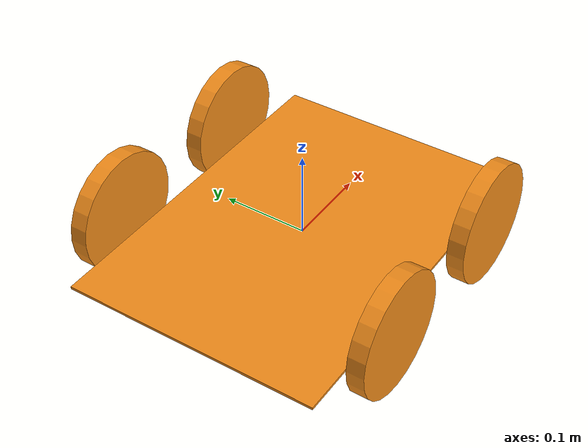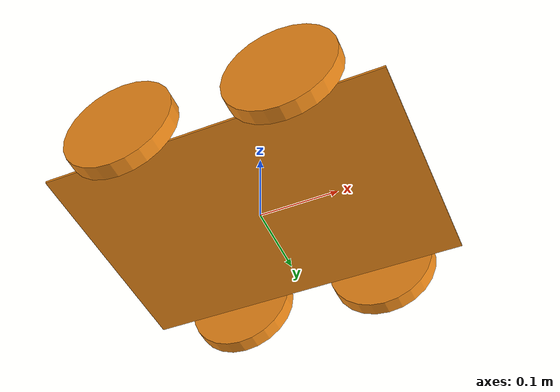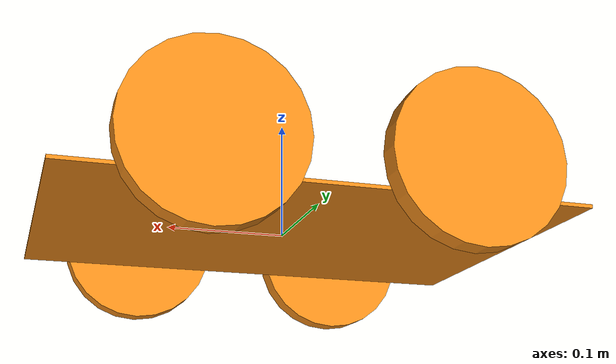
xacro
<?xml version="1.0"?>

<robot name="rrbot" xmlns:xacro="http://www.ros.org/wiki/xacro">

<xacro:macro name="steering" params="suffix x_offset wheel_offset y_offset car_base_height:=^ axle_offset_z=^ wheel_radius=^ wheel_mass=^">
<joint name="steer_${suffix}" type="continuous">
  <parent link="car_chassis_link"/>
  <child link="motor_${suffix}_link"/>
  <origin xyz="${x_offset} ${y_offset} ${car_base_height + axle_offset_z}" rpy="0 0 0"/>
  <axis xyz="0 1 0"/>
  <dynamics damping="0.7"/>
</joint>

<link name="motor_${suffix}_link">
  <collision>
    <origin xyz="0 ${wheel_offset} 0" rpy="${PI/2} 0 0"/>
    <geometry>
      <cylinder radius="${wheel_radius}" length="${wheel_width}"/>
    </geometry>
  </collision>

  <visual>
    <origin xyz="0 ${wheel_offset} 0" rpy="${PI/2} 0 0"/>
    <geometry>
      <cylinder radius="${wheel_radius}" length="${wheel_width}"/>
    </geometry>
    <material name="orange"/>
  </visual>

  <inertial>
    <origin xyz="0 ${wheel_offset} 0" rpy="${PI/2} 0 0"/>
    <mass value="${wheel_mass}"/>
    <inertia
        ixx="1.0" ixy="0.0" ixz="0.0"
        iyy="1.0" iyz="0.0"
        izz="1.0"/>
  </inertial>
</link>
</xacro:macro>

  <!-- Constants for robot dimensions -->
  <xacro:property name="PI" value="3.1415926535897931"/>
  <!-- base plate of the car -->
  <xacro:property name="car_base_width" value="0.3" />
  <xacro:property name="car_base_length" value="0.42" />
  <xacro:property name="car_base_height" value="0.003" />
  <xacro:property name="car_base_mass" value="0.2" />
  <!-- steering -->
  <xacro:property name="axle_offset_x" value="0.1" />
  <xacro:property name="axle_offset_z" value="0.02" />
  <!-- wheels -->
  <xacro:property name="wheel_width" value="0.02" />
  <xacro:property name="wheel_radius" value="0.07" />
  <xacro:property name="wheel_mass" value="0.1" />

  <!-- Import all Gazebo-customization elements, including Gazebo colors -->
  <!-- Import Rviz colors -->

  <!-- Used for fixing robot to Gazebo 'base_link' -->

  <!-- Base Link -->
  <link name="car_chassis_link">
    <collision>
      <origin xyz="0 0 ${car_base_height/2}" rpy="0 0 0"/>
      <geometry>
        <box size="${car_base_length} ${car_base_width} ${car_base_height}"/>
      </geometry>
    </collision>

    <visual>
      <origin xyz="0 0 ${car_base_height/2}" rpy="0 0 0"/>
      <geometry>
        <box size="${car_base_length} ${car_base_width} ${car_base_height}"/>
      </geometry>
      <material name="orange"/>
    </visual>

    <inertial>
      <origin xyz="0 0 ${car_base_height/2}" rpy="0 0 0"/>
      <mass value="${car_base_mass}"/>
      <inertia
          ixx="${car_base_mass / 12.0 * (car_base_width*car_base_width + car_base_height*car_base_height)}" ixy="0.0" ixz="0.0"
          iyy="${car_base_mass / 12.0 * (car_base_height*car_base_height + car_base_width*car_base_width)}" iyz="0.0"
          izz="${car_base_mass / 12.0 * (car_base_width*car_base_width + car_base_width*car_base_width)}"/>
    </inertial>
  </link>

  <xacro:steering suffix="front_left" x_offset="${axle_offset_x}" y_offset="${car_base_width/2+0.001}" wheel_offset="${wheel_width}"/>
  <xacro:steering suffix="front_right" x_offset="${axle_offset_x}" y_offset="${-1*car_base_width/2-0.001}" wheel_offset="${-1*wheel_width}"/>
  <xacro:steering suffix="back_left" x_offset="${-axle_offset_x}" y_offset="${car_base_width/2+0.001}"  wheel_offset="${wheel_width}"/>
  <xacro:steering suffix="back_right" x_offset="${-axle_offset_x}" y_offset="${-car_base_width/2-0.001}"  wheel_offset="${-1*wheel_width}"/>

</robot>
